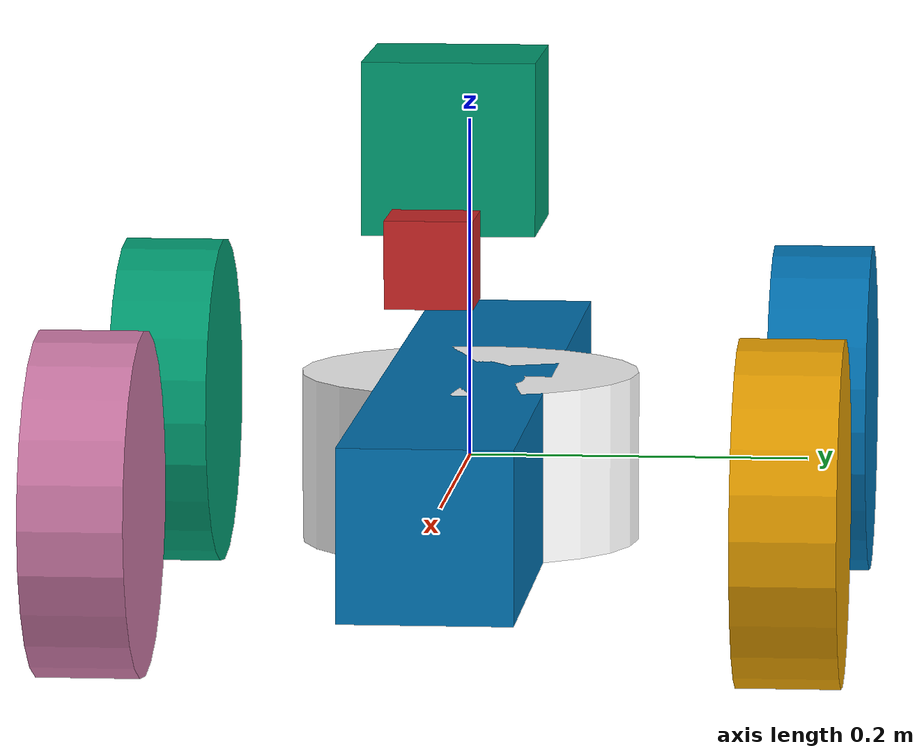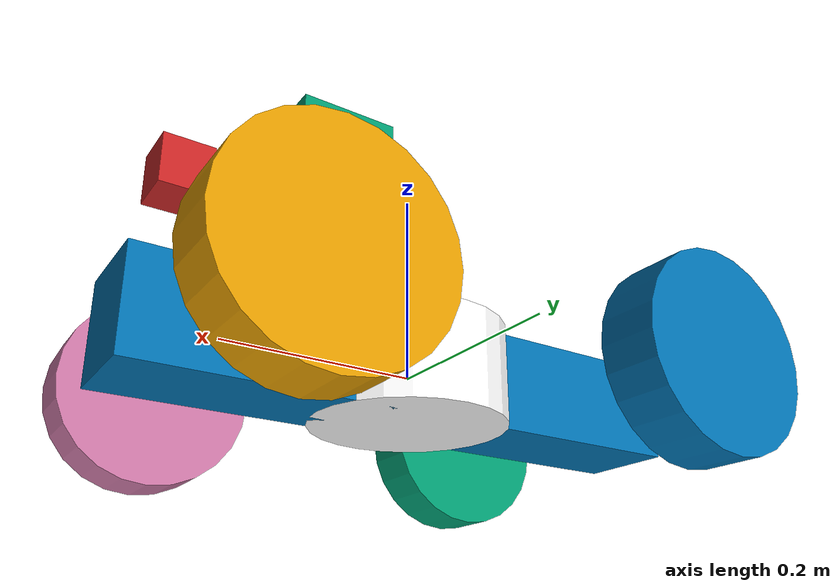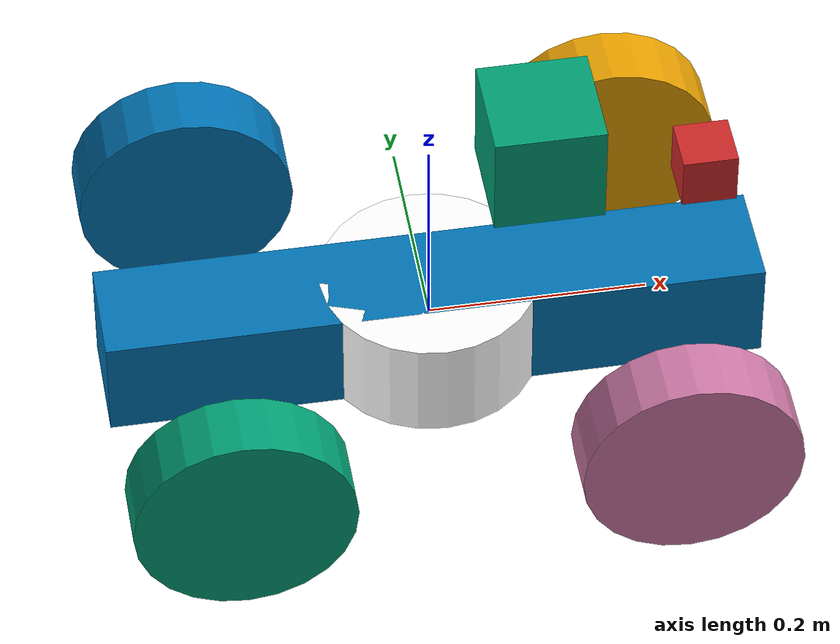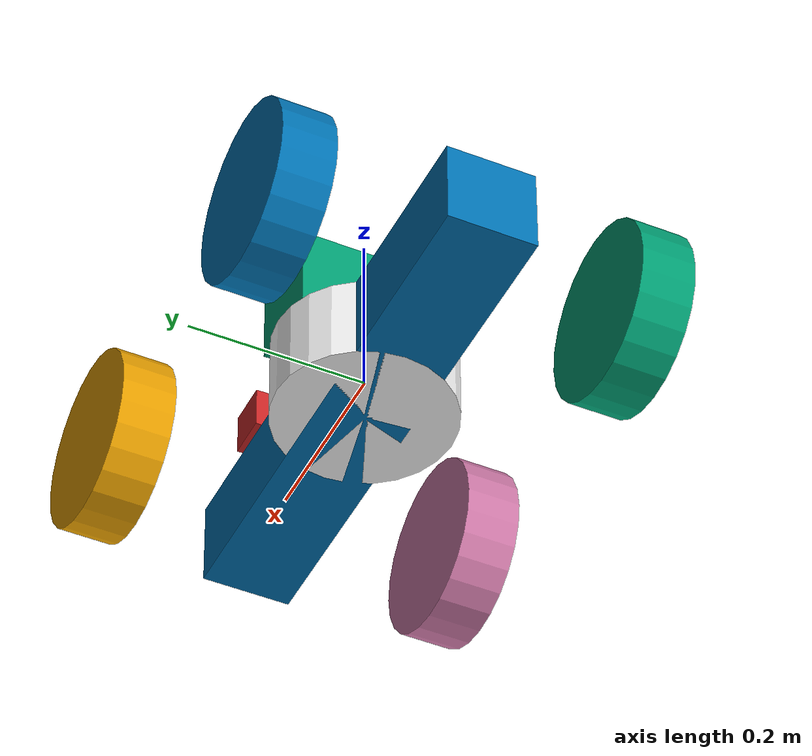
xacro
<robot xmlns:xacro="http://www.ros.org/wiki/xacro" name="new_robot">

    <xacro:property name="base_length" value="0.1" />
    <xacro:property name="base_radius" value="0.1" />

    <xacro:property name="base_x" value="0.6" />
    <xacro:property name="base_y" value="0.1" />
    <xacro:property name="base_z" value="0.1" />

    <xacro:macro name="default_inertial" params="mass">
       <inertial>
               <mass value="${mass}" />
               <inertia ixx="0.06" ixy="0.0" ixz="0.0"
                   iyy="0.05" iyz="0.0"
                   izz="0.05" />
       </inertial>
   </xacro:macro>

    <link name="base_link">
        <visual>
            <origin xyz="0 0 0" rpy="0 0 0"/>
            <geometry>
                <cylinder radius="${base_radius}" length="${base_length}"/>
            </geometry>

            <material name="white">>
                <color rgba="1 1 1 1"/>
            </material>
        </visual>

        <collision>
            <origin xyz="0 0 0" rpy="0 0 0"/>
            <geometry>
                <cylinder radius="${base_radius}" length="${base_length}"/>
            </geometry>
        </collision>

        <xacro:default_inertial mass="10"/>

    </link>
    <link name="gps_link">

    </link>
    <joint name="gps_joint" type="fixed">
            <origin xyz="0 0 0" rpy="0 0 0"/>
            <parent link="base_link"/>
            <child link="gps_link"/>
    </joint>

     <joint name="hokuyo_joint" type="fixed">
        <axis xyz="0 1 0" />
        <origin xyz="0.1 0 0.2" rpy="0 0 0"/>
        <parent link="base_link"/>
        <child link="hokuyo_link"/>
    </joint>

    <!-- Hokuyo Laser -->
    <link name="hokuyo_link">
        <collision>
            <origin xyz="0 0 0" rpy="0 0 0"/>
            <geometry>
            <box size="0.1 0.1 0.1"/>
            </geometry>
        </collision>

        <visual>
        <origin xyz="0 0 0" rpy="0 0 0"/>
        <geometry>
            <box size="0.1 0.1 0.1"/>
        </geometry>
        </visual>

        <inertial>
            <mass value="1e-5" />
            <origin xyz="0 0 0" rpy="0 0 0"/>
            <inertia ixx="1e-6" ixy="0" ixz="0" iyy="1e-6" iyz="0" izz="1e-6" />
        </inertial>
    </link>

     <xacro:property name="camera_link" value="0.05" /> <!-- Size of square 'camera' box -->

    <joint name="camera_joint" type="fixed">
        <axis xyz="0 1 0" />
        <origin xyz="0.25 0 0.15" rpy="0 0 0"/>
        <parent link="base_link"/>
        <child link="camera_link"/>
    </joint>

    <!-- Camera -->
    <link name="camera_link">
        <collision>
        <origin xyz="0 0 0" rpy="0 0 0"/>
        <geometry>
            <box size="${camera_link} ${camera_link} ${camera_link}"/>
        </geometry>
        </collision>

        <visual>
        <origin xyz="0 0 0" rpy="0 0 0"/>
        <geometry>
            <box size="${camera_link} ${camera_link} ${camera_link}"/>
        </geometry>
        <material name="red"/>
        </visual>

        <inertial>
        <mass value="1e-5" />
        <origin xyz="0 0 0" rpy="0 0 0"/>
        <inertia ixx="1e-6" ixy="0" ixz="0" iyy="1e-6" iyz="0" izz="1e-6" />
        </inertial>
    </link>

    <link name="link_1">

        <visual>
            <origin xyz="0 0 0" rpy="0 0 0"/>
            <geometry>
                 <box size="${base_x} ${base_y} ${base_z}"/>
            </geometry>
        </visual>

        <collision>
            <origin xyz="0 0 0" rpy="0 0 0"/>
            <geometry>
                 <box size="${base_x} ${base_y} ${base_z}"/>
            </geometry>
        </collision>

         <xacro:default_inertial mass="10"/>

    </link>

    <joint name="joint_1" type="fixed">

        <parent link="base_link"/>
        <child link="link_1"/>
        <axis rpy="0 0 0" xyz="0 0 1"/>
    </joint>

    <xacro:macro name="wheel" params="name *origin">
        <link name="${name}_wheelholder_link">
            <visual>
                <origin xyz="0 0 0" rpy="0 0 0"/>
                <geometry>
                    <box size="0.01 0.01 0.01"/>
                </geometry>
            </visual>
            <inertial>
               <mass value="10" />
                    <inertia ixx="0.002" ixy="0.0" ixz="0.0"
                        iyy="0.002" iyz="0.0"
                        izz="0.002" />
            </inertial>
        </link>

        <joint name="${name}wheelholder_joint" type="fixed">
            <xacro:insert_block name="origin" />
            <parent link="base_link"/>
            <child link="${name}_wheelholder_link"/>
            <axis rpy="0 0 0" xyz="0 0 1"/>
        </joint>

        <link name="${name}_wheel_link">
            <visual>
                <origin xyz="0 0 0" rpy="1.57079 0 0"/>
                <geometry>
                    <cylinder radius="0.1" length="0.06"/>
                </geometry>
            </visual>
            <collision>
                <origin xyz="0 0 0" rpy="1.57079 0 0"/>
                <geometry>
                    <cylinder radius="0.1" length="0.06"/>
                </geometry>
            </collision>
            <inertial>
               <mass value="2.5" />
               <inertia ixx="0.0016" ixy="0" ixz="0" iyy="0.0016" iyz="0" izz="0.003" />
                </inertial>
        </link>

        <gazebo reference="${name}_wheel_link">
            <mu1>0.85</mu1>
            <mu2>0.20</mu2>
            <kp value="10000000.0" />
			<kd value="1.0" />
			<fdir1 value="1 0 0"/>
        </gazebo>

        <joint name="${name}_wheel_joint" type="continuous">
            <origin xyz="0 0 0" rpy="0 0 0"/>
            <parent link="${name}_wheelholder_link"/>
            <child link="${name}_wheel_link"/>
            <axis  xyz="0 1 0"/>
        </joint>

    </xacro:macro>

    <wheel name="right_front">
        <origin xyz="0.2 -0.2 0" rpy="0 0 0"/>
    </wheel>

    <wheel name="left_front">
        <origin xyz="0.2 0.2 0" rpy="0 0 0"/>
    </wheel>

    <wheel name="right_rear">
        <origin xyz="-0.2 -0.2 0" rpy="0 0 0"/>
    </wheel>

    <wheel name="left_rear">
        <origin xyz="-0.2 0.2 0" rpy="0 0 0"/>
    </wheel>

    <gazebo>

  <plugin name="differential_drive_controller" filename="libgazebo_ros_diff_drive.so">

    <!-- Plugin update rate in Hz -->
    <updateRate>20</updateRate>

    <!-- Name of left joint, defaults to `left_joint` -->
    <leftJoint>left_front_wheel_joint</leftJoint>

    <!-- Name of right joint, defaults to `right_joint` -->
    <rightJoint>right_front_wheel_joint</rightJoint>

    <!-- The distance from the center of one wheel to the other, in meters, defaults to 0.34 m -->
    <wheelSeparation>0.4</wheelSeparation>

    <!-- Diameter of the wheels, in meters, defaults to 0.15 m -->
    <wheelDiameter>0.2</wheelDiameter>

    <!-- Wheel acceleration, in rad/s^2, defaults to 0.0 rad/s^2 -->
    <wheelAcceleration>1.0</wheelAcceleration>

    <!-- Maximum torque which the wheels can produce, in Nm, defaults to 5 Nm -->
    <wheelTorque>30</wheelTorque>

    <!-- Topic to receive geometry_msgs/Twist message commands, defaults to `cmd_vel` -->
    <commandTopic>/cmd_vel</commandTopic>

    <!-- Topic to publish nav_msgs/Odometry messages, defaults to `odom` -->
    <odometryTopic>odom</odometryTopic>

    <!-- Odometry frame, defaults to `odom` -->
    <odometryFrame>odom</odometryFrame>

    <!-- Robot frame to calculate odometry from, defaults to `base_footprint` -->
    <robotBaseFrame>base_link</robotBaseFrame>

    <!-- Odometry source, 0 for ENCODER, 1 for WORLD, defaults to WORLD -->
    <odometrySource>1</odometrySource>

    <!-- Set to true to publish transforms for the wheel links, defaults to false -->
    <publishWheelTF>true</publishWheelTF>

    <!-- Set to true to publish transforms for the odometry, defaults to true -->
    <publishOdom>true</publishOdom>

    <publishOdomTF>false</publishOdomTF>

    <!-- Set to true to publish sensor_msgs/JointState on /joint_states for the wheel joints, defaults to false -->
    <publishWheelJointState>true</publishWheelJointState>

    <!-- Set to true to swap right and left wheels, defaults to true -->
    <legacyMode>false</legacyMode>
  </plugin>
</gazebo>

<gazebo>
  <plugin name="differential_drive_controller" filename="libgazebo_ros_diff_drive.so">

    <!-- Plugin update rate in Hz -->
    <updateRate>20</updateRate>

    <!-- Name of left joint, defaults to `left_joint` -->
    <leftJoint>left_rear_wheel_link</leftJoint>

    <!-- Name of right joint, defaults to `right_joint` -->
    <rightJoint>right_rear_wheel_link</rightJoint>

    <!-- The distance from the center of one wheel to the other, in meters, defaults to 0.34 m -->
    <wheelSeparation>0.6</wheelSeparation>

    <!-- Diameter of the wheels, in meters, defaults to 0.15 m -->
    <wheelDiameter>0.2</wheelDiameter>

    <!-- Wheel acceleration, in rad/s^2, defaults to 0.0 rad/s^2 -->
    <wheelAcceleration>1.0</wheelAcceleration>

    <!-- Maximum torque which the wheels can produce, in Nm, defaults to 5 Nm -->
    <wheelTorque>30</wheelTorque>

    <!-- Topic to receive geometry_msgs/Twist message commands, defaults to `cmd_vel` -->
    <commandTopic>/cmd_vel</commandTopic>

    <!-- Topic to publish nav_msgs/Odometry messages, defaults to `odom` -->
    <odometryTopic>odom</odometryTopic>

    <!-- Odometry frame, defaults to `odom` -->
    <odometryFrame>odom</odometryFrame>

    <!-- Robot frame to calculate odometry from, defaults to `base_footprint` -->
    <robotBaseFrame>base_link</robotBaseFrame>

    <!-- Odometry source, 0 for ENCODER, 1 for WORLD, defaults to WORLD -->
    <odometrySource>1</odometrySource>

    <!-- Set to true to publish transforms for the wheel links, defaults to false -->
    <publishWheelTF>true</publishWheelTF>

    <!-- Set to true to publish transforms for the odometry, defaults to true -->
    <publishOdom>true</publishOdom>

    <publishOdomTF>false</publishOdomTF>

    <!-- Set to true to publish sensor_msgs/JointState on /joint_states for the wheel joints, defaults to false -->
    <publishWheelJointState>true</publishWheelJointState>

    <!-- Set to true to swap right and left wheels, defaults to true -->
    <legacyMode>false</legacyMode>
  </plugin>
</gazebo>

    <gazebo>
        <plugin name="imu_plugin" filename="libgazebo_ros_imu.so">
        <alwaysOn>true</alwaysOn>
        <bodyName>base_link</bodyName>
        <topicName>imu/data</topicName>
        <serviceName>imu_service</serviceName>
        <gaussianNoise>0.0</gaussianNoise>
        <updateRate>20.0</updateRate>
        </plugin>
    </gazebo>

    <gazebo>
        <plugin name="gazebo_ros_gps" filename="libhector_gazebo_ros_gps.so">
        <updateRate>4.0</updateRate>
        <bodyName>base_link</bodyName>
        <frameId>gps_link</frameId>
        <topicName>/gps/fix</topicName>
        <velocityTopicName>/gps/fix_velocity</velocityTopicName>
        <referenceLatitude>41.22</referenceLatitude>
        <referenceLongitude>30.10</referenceLongitude>
        <referenceHeading>90</referenceHeading>
        <referenceAltitude>10</referenceAltitude>
        <offset>0 0 0</offset>
        <drift>0.0 0.0 0.0</drift>
        <gaussianNoise>0.0 0.0 0.0</gaussianNoise>
        <velocityDrift>0.001 0.001 0.001</velocityDrift>
        <velocityGaussianNoise>0.5 0.5 0.5</velocityGaussianNoise>
        </plugin>
    </gazebo>

    <gazebo reference="hokuyo_link">
        <sensor type="ray" name="head_hokuyo_sensor">
        <pose>0 0 0 0 0 0</pose>
        <visualize>false</visualize>
        <update_rate>40</update_rate>
        <ray>
            <scan>
            <horizontal>
                <samples>720</samples>
                <resolution>1</resolution>
                <min_angle>-1.570796</min_angle>
                <max_angle>1.570796</max_angle>
            </horizontal>
            </scan>
            <range>
            <min>0.10</min>
            <max>30.0</max>
            <resolution>0.01</resolution>
            </range>
            <noise>
            <type>gaussian</type>
            <mean>0.0</mean>
            <stddev>0.01</stddev>
            </noise>
        </ray>
        <plugin name="gazebo_ros_head_hokuyo_controller" filename="libgazebo_ros_laser.so">
            <topicName>/rrbot/laser/scan</topicName>
            <frameName>hokuyo_link</frameName>
        </plugin>
        </sensor>
    </gazebo>

     <!-- camera -->
  <gazebo reference="camera_link">
    <sensor type="camera" name="camera1">
      <update_rate>30.0</update_rate>
      <camera name="head">
        <horizontal_fov>1.3962634</horizontal_fov>
        <image>
          <width>1200</width>
          <height>800</height>
          <format>R8G8B8</format>
        </image>
        <clip>
          <near>0.02</near>
          <far>300</far>
        </clip>
        <noise>
          <type>gaussian</type>
          <!-- Noise is sampled independently per pixel on each frame.
               That pixel's noise value is added to each of its color
               channels, which at that point lie in the range [0,1]. -->
          <mean>0.0</mean>
          <stddev>0.007</stddev>
        </noise>
      </camera>
      <plugin name="camera_controller" filename="libgazebo_ros_camera.so">
        <alwaysOn>true</alwaysOn>
        <updateRate>0.0</updateRate>
        <cameraName>rrbot/camera1</cameraName>
        <imageTopicName>image_raw</imageTopicName>
        <cameraInfoTopicName>camera_info</cameraInfoTopicName>
        <frameName>camera_link</frameName>
        <hackBaseline>0.07</hackBaseline>
        <distortionK1>0.0</distortionK1>
        <distortionK2>0.0</distortionK2>
        <distortionK3>0.0</distortionK3>
        <distortionT1>0.0</distortionT1>
        <distortionT2>0.0</distortionT2>
      </plugin>
    </sensor>
  </gazebo>

</robot>
